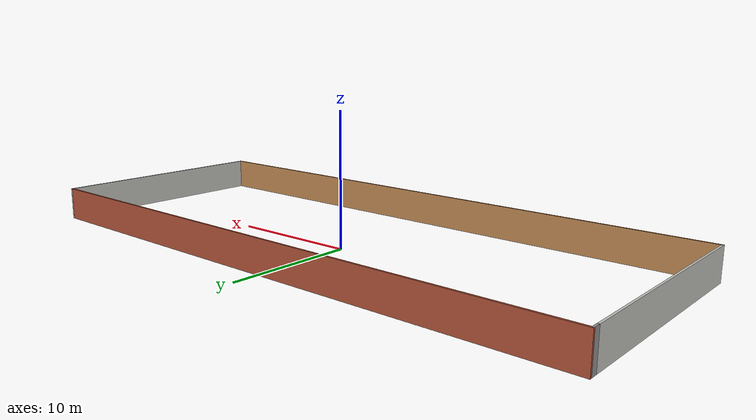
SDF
<?xml version='1.0'?>
<sdf version='1.6'>
  <model name='indoor1'>
    <pose frame=''>0.149432 -1.15477 0 0 -0 0</pose>
    <link name='Wall_1'>
      <collision name='Wall_1_Collision'>
        <geometry>
          <box>
            <size>17.75 0.15 2.5</size>
          </box>
        </geometry>
        <pose frame=''>0 0 1.25 0 -0 0</pose>
      </collision>
      <visual name='Wall_1_Visual'>
        <pose frame=''>0 0 1.25 0 -0 0</pose>
        <geometry>
          <box>
            <size>17.75 0.15 2.5</size>
          </box>
        </geometry>
        <material>
          <script>
            <uri>file://media/materials/scripts/gazebo.material</uri>
            <name>Gazebo/CeilingTiled</name>
          </script>
          <ambient>1 1 1 1</ambient>
        </material>
        <meta>
          <layer>0</layer>
        </meta>
      </visual>
      <pose frame=''>-22.8 -0.25 0 0 -0 -1.5708</pose>
    </link>
    <link name='Wall_2'>
      <collision name='Wall_2_Collision'>
        <geometry>
          <box>
            <size>45.75 0.15 2.5</size>
          </box>
        </geometry>
        <pose frame=''>0 0 1.25 0 -0 0</pose>
      </collision>
      <visual name='Wall_2_Visual'>
        <pose frame=''>0 0 1.25 0 -0 0</pose>
        <geometry>
          <box>
            <size>45.75 0.15 2.5</size>
          </box>
        </geometry>
        <material>
          <script>
            <uri>file://media/materials/scripts/gazebo.material</uri>
            <name>Gazebo/Wood</name>
          </script>
          <ambient>1 1 1 1</ambient>
        </material>
        <meta>
          <layer>0</layer>
        </meta>
      </visual>
      <pose frame=''>-0 -9.05 0 0 -0 0</pose>
    </link>
    <link name='Wall_3'>
      <collision name='Wall_3_Collision'>
        <geometry>
          <box>
            <size>18.25 0.15 2.5</size>
          </box>
        </geometry>
        <pose frame=''>0 0 1.25 0 -0 0</pose>
      </collision>
      <visual name='Wall_3_Visual'>
        <pose frame=''>0 0 1.25 0 -0 0</pose>
        <geometry>
          <box>
            <size>18.25 0.15 2.5</size>
          </box>
        </geometry>
        <material>
          <script>
            <uri>file://media/materials/scripts/gazebo.material</uri>
            <name>Gazebo/CeilingTiled</name>
          </script>
          <ambient>0.435294 0.796078 0.67451 1</ambient>
        </material>
        <meta>
          <layer>0</layer>
        </meta>
      </visual>
      <pose frame=''>22.8 0 0 0 -0 1.5708</pose>
    </link>
    <link name='Wall_4'>
      <collision name='Wall_4_Collision'>
        <geometry>
          <box>
            <size>45.75 0.15 2.5</size>
          </box>
        </geometry>
        <pose frame=''>0 0 1.25 0 -0 0</pose>
      </collision>
      <visual name='Wall_4_Visual'>
        <pose frame=''>0 0 1.25 0 -0 0</pose>
        <geometry>
          <box>
            <size>45.75 0.15 2.5</size>
          </box>
        </geometry>
        <material>
          <script>
            <uri>file://media/materials/scripts/gazebo.material</uri>
            <name>Gazebo/Bricks</name>
          </script>
          <ambient>1 1 1 1</ambient>
        </material>
        <meta>
          <layer>0</layer>
        </meta>
      </visual>
      <pose frame=''>-0 9.05 0 0 -0 3.14159</pose>
    </link>
    <link name='Wall_5'>
      <collision name='Wall_5_Collision'>
        <geometry>
          <box>
            <size>0.65 0.15 2.5</size>
          </box>
        </geometry>
        <pose frame=''>0 0 1.25 0 -0 0</pose>
      </collision>
      <visual name='Wall_5_Visual'>
        <pose frame=''>0 0 1.25 0 -0 0</pose>
        <geometry>
          <box>
            <size>0.65 0.15 2.5</size>
          </box>
        </geometry>
        <material>
          <script>
            <uri>file://media/materials/scripts/gazebo.material</uri>
            <name>Gazebo/Grey</name>
          </script>
          <ambient>1 1 1 1</ambient>
        </material>
        <meta>
          <layer>0</layer>
        </meta>
      </visual>
      <pose frame=''>-22.8 8.8 0 0 -0 -1.5708</pose>
    </link>
    <static>1</static>
  </model>
</sdf>
